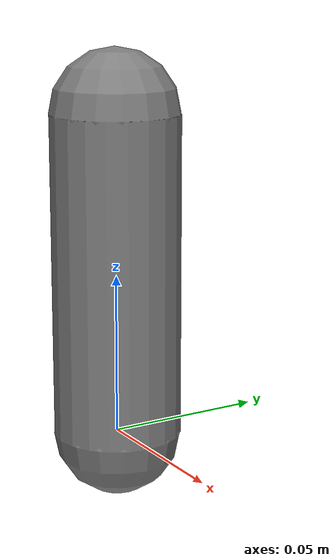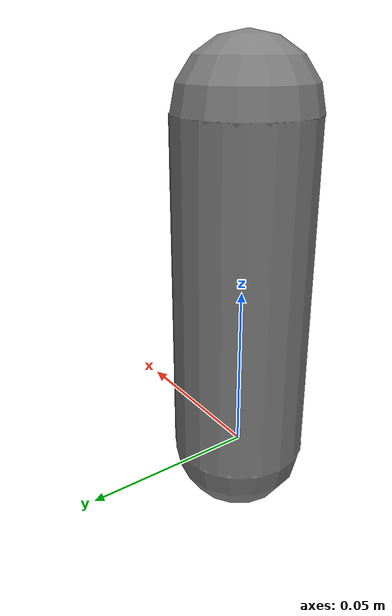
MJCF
<mujoco model="test">
                <worldbody>
                    <body name="link">
                        <joint name="joint1" type="hinge"/>
                        <geom type="capsule" size="0.02" fromto="0 0 0 0 0 0.1"/>
                    </body>
                </worldbody>
                <actuator>
                    <muscle name="muscle1" joint="joint1" timeconst="0.02 0.06" range="0.8 1.1" force="500" scale="300" lmin="0.4" lmax="1.8" vmax="2.0" fpmax="1.5" fvmax="1.3"/>
                </actuator>
            </mujoco>
